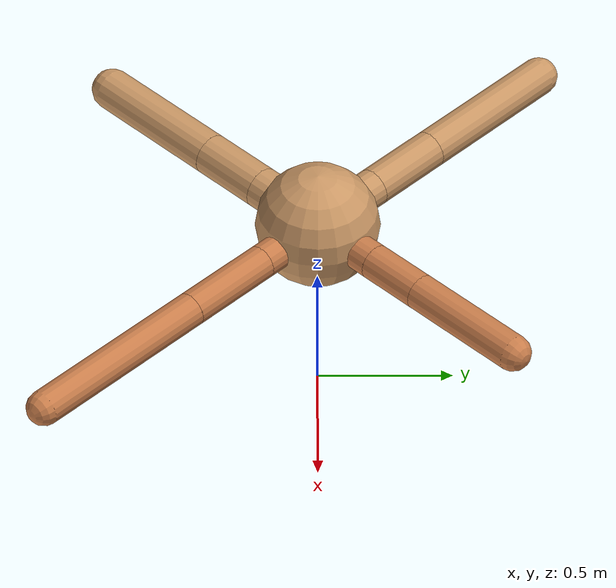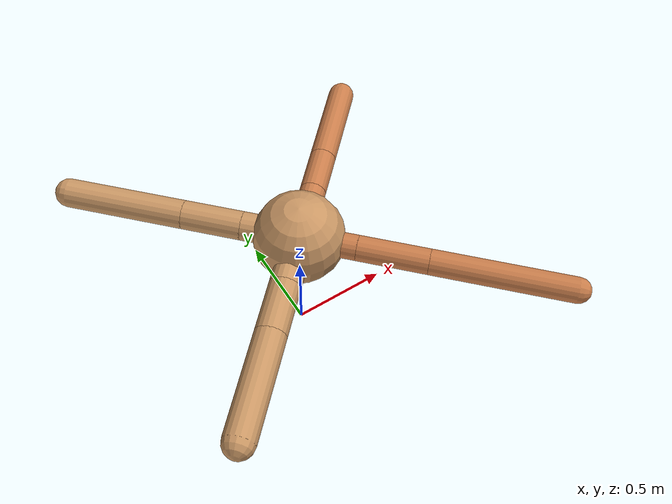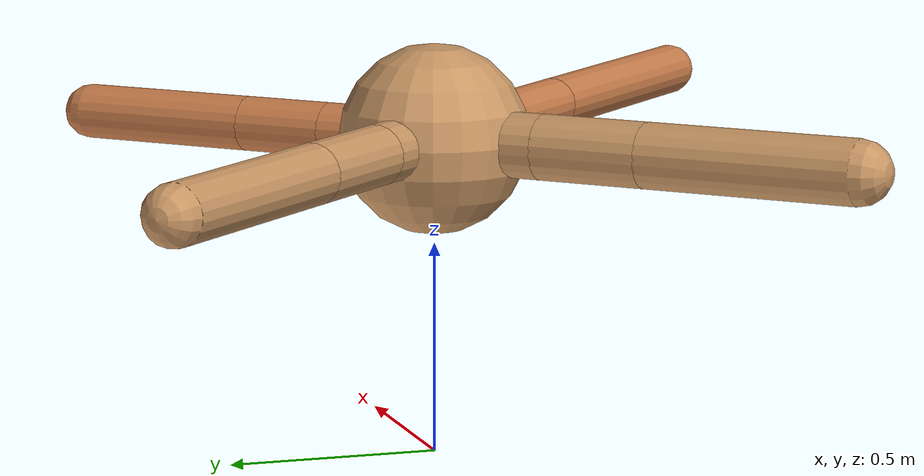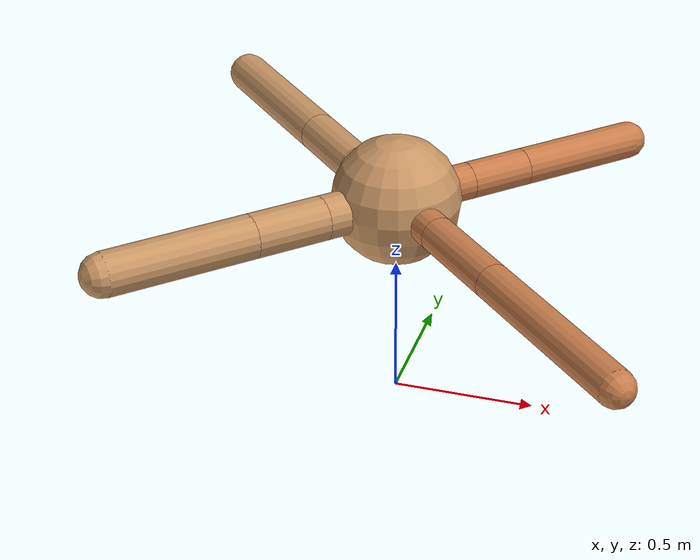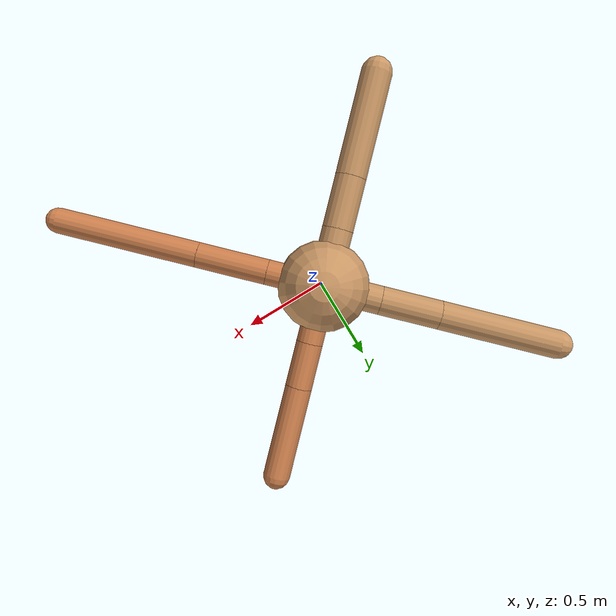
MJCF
<?xml version="1.0" ?>
<mujoco model="ant">

	<compiler angle="degree" coordinate="local" inertiafromgeom="true"/>

	<option integrator="RK4" timestep="0.01"/>

	<custom>

		<numeric data="0.0 0.0 0.55 1.0 0.0 0.0 0.0 0.0 1.0 0.0 -1.0 0.0 -1.0 0.0 1.0" name="init_qpos"/>

	</custom>

	<default>

		<joint armature="1" damping="1" limited="true"/>

		<geom conaffinity="0" condim="3" density="5.0" friction="1.5 0.1 0.1" margin="0.01" rgba="0.8 0.6 0.4 1"/>

	</default>

	<worldbody>

		<body name="torso" pos="0 0 0.75">

			<geom name="torso_geom" pos="0 0 0" size="0.22485620981329976" type="sphere"/>

			<!--joint armature="0" damping="0" limited="false" margin="0.01" name="root" pos="0 0 0" type="free"/-->

			<body name="front_left_leg" pos="0 0 0">

				<geom fromto="0 0 0 0.2 0.2 0" name="aux_1_geom" size="0.0652604406566517" type="capsule" rgba=".8 .5 .3 1"/>

				<body name="aux_1" pos="0.2 0.2 0">

					<joint axis="0 0 1" name="hip_1" pos="0.0 0.0 0.0" range="-40 40" type="hinge"/>

					<geom fromto="0 0 0 0.15615483261109936 0.15615483261109936 0" name="left_leg_geom" size="0.0652604406566517" type="capsule" rgba=".8 .5 .3 1"/>

					<body pos="0.15615483261109936 0.15615483261109936 0" name="front_left_foot">

						<joint axis="-1 1 0" name="ankle_1" pos="0.0 0.0 0.0" range="30 100" type="hinge"/>

						<geom fromto="0 0 0 0.3123096652221987 0.3123096652221987 0" name="left_ankle_geom" size="0.0652604406566517" type="capsule" rgba=".8 .5 .3 1"/>

					</body>

				</body>

			</body>

			<body name="front_right_leg" pos="0 0 0">

				<geom fromto="0 0 0 -0.2 0.2 0" name="aux_2_geom" size="0.07133027169989585" type="capsule"/>

				<body name="aux_2" pos="-0.2 0.2 0">

					<joint axis="0 0 1" name="hip_2" pos="0.0 0.0 0.0" range="-40 40" type="hinge"/>

					<geom fromto="0 0 0 -0.20870821902897602 0.20870821902897602 0" name="right_leg_geom" size="0.07133027169989585" type="capsule"/>

					<body pos="-0.20870821902897602 0.20870821902897602 0" name="front_right_foot">

						<joint axis="1 1 0" name="ankle_2" pos="0.0 0.0 0.0" range="-100 -30" type="hinge"/>

						<geom fromto="0 0 0 -0.41741643805795203 0.41741643805795203 0" name="right_ankle_geom" size="0.07133027169989585" type="capsule"/>

					</body>

				</body>

			</body>

			<body name="left_back_leg" pos="0 0 0">

				<geom fromto="0 0 0 -0.2 -0.2 0" name="aux_3_geom" size="0.07712980662210377" type="capsule"/>

				<body name="aux_3" pos="-0.2 -0.2 0">

					<joint axis="0 0 1" name="hip_3" pos="0.0 0.0 0.0" range="-40 40" type="hinge"/>

					<geom fromto="0 0 0 -0.1854364039584599 -0.1854364039584599 0" name="back_leg_geom" size="0.07712980662210377" type="capsule"/>

					<body pos="-0.1854364039584599 -0.1854364039584599 0" name="left_back_foot">

						<joint axis="-1 1 0" name="ankle_3" pos="0.0 0.0 0.0" range="-100 -30" type="hinge"/>

						<geom fromto="0 0 0 -0.3708728079169198 -0.3708728079169198 0" name="third_ankle_geom" size="0.07712980662210377" type="capsule"/>

					</body>

				</body>

			</body>

			<body name="right_back_leg" pos="0 0 0">

				<geom fromto="0 0 0 0.2 -0.2 0" name="aux_4_geom" size="0.06289026250529693" type="capsule" rgba=".8 .5 .3 1"/>

				<body name="aux_4" pos="0.2 -0.2 0">

					<joint axis="0 0 1" name="hip_4" pos="0.0 0.0 0.0" range="-40 40" type="hinge"/>

					<geom fromto="0 0 0 0.24474937347352746 -0.24474937347352746 0" name="rightback_leg_geom" size="0.06289026250529693" type="capsule" rgba=".8 .5 .3 1"/>

					<body pos="0.24474937347352746 -0.24474937347352746 0" name="right_back_foot">

						<joint axis="1 1 0" name="ankle_4" pos="0.0 0.0 0.0" range="30 100" type="hinge"/>

						<geom fromto="0 0 0 0.4894987469470549 -0.4894987469470549 0" name="fourth_ankle_geom" size="0.06289026250529693" type="capsule" rgba=".8 .5 .3 1"/>

					</body>

				</body>

			</body>

		</body>

	</worldbody>

	<actuator>

		<motor ctrllimited="true" ctrlrange="-1.0 1.0" joint="hip_4" gear="150"/>

		<motor ctrllimited="true" ctrlrange="-1.0 1.0" joint="ankle_4" gear="150"/>

		<motor ctrllimited="true" ctrlrange="-1.0 1.0" joint="hip_1" gear="150"/>

		<motor ctrllimited="true" ctrlrange="-1.0 1.0" joint="ankle_1" gear="150"/>

		<motor ctrllimited="true" ctrlrange="-1.0 1.0" joint="hip_2" gear="150"/>

		<motor ctrllimited="true" ctrlrange="-1.0 1.0" joint="ankle_2" gear="150"/>

		<motor ctrllimited="true" ctrlrange="-1.0 1.0" joint="hip_3" gear="150"/>

		<motor ctrllimited="true" ctrlrange="-1.0 1.0" joint="ankle_3" gear="150"/>

	</actuator>

</mujoco>
